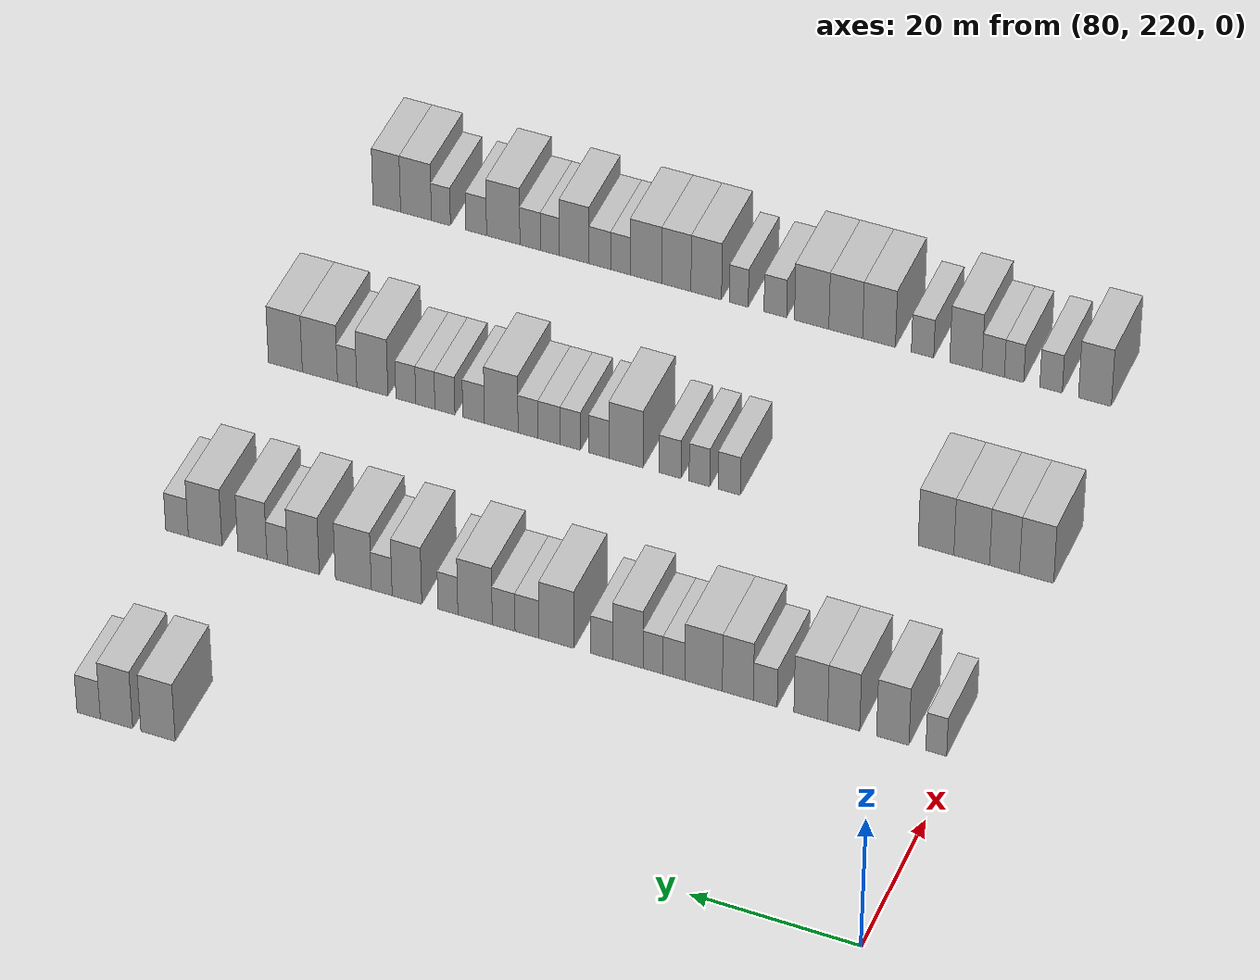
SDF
<sdf version="1.6">
 <world name="default">
  <model name="building_653">
   <static>1</static>
   <pose>85.0000 303.6651 0 0.000000 0.000000 0.000000</pose>
   <link name="link">
    <pose>0 0 4.50 0 0 0</pose>
    <collision name="collision"><geometry><box><size>10.0000 4.2047 9.0000</size></box></geometry></collision>
    <visual name="visual">
     <cast_shadows>0</cast_shadows>
     <geometry><box><size>10.0000 4.2047 9.0000</size></box></geometry>
     <material>
      <script>
       <uri>model://HANNAS_wall/materials/scripts</uri>
       <uri>model://HANNAS_wall/materials/textures</uri>
       <name>vrc/HANNAS_wall</name>
      </script>
     </material>
    </visual>
   </link>
  </model>
  <model name="building_654">
   <static>1</static>
   <pose>85.0000 308.7509 0 0.000000 0.000000 0.000000</pose>
   <link name="link">
    <pose>0 0 4.50 0 0 0</pose>
    <collision name="collision"><geometry><box><size>10.0000 3.9667 9.0000</size></box></geometry></collision>
    <visual name="visual">
     <cast_shadows>0</cast_shadows>
     <geometry><box><size>10.0000 3.9667 9.0000</size></box></geometry>
     <material>
      <script>
       <uri>model://HANNAS_wall/materials/scripts</uri>
       <uri>model://HANNAS_wall/materials/textures</uri>
       <name>vrc/HANNAS_wall</name>
      </script>
     </material>
    </visual>
   </link>
  </model>
  <model name="building_655">
   <static>1</static>
   <pose>85.0000 312.1723 0 0.000000 0.000000 0.000000</pose>
   <link name="link">
    <pose>0 0 3.00 0 0 0</pose>
    <collision name="collision"><geometry><box><size>10.0000 2.8761 6.0000</size></box></geometry></collision>
    <visual name="visual">
     <cast_shadows>0</cast_shadows>
     <geometry><box><size>10.0000 2.8761 6.0000</size></box></geometry>
     <material>
      <script>
       <uri>model://HANNAS_wall/materials/scripts</uri>
       <uri>model://HANNAS_wall/materials/textures</uri>
       <name>vrc/HANNAS_wall</name>
      </script>
     </material>
    </visual>
   </link>
  </model>
  <model name="building_865">
   <static>1</static>
   <pose>115.0000 222.4674 0 0.000000 0.000000 0.000000</pose>
   <link name="link">
    <pose>0 0 3.00 0 0 0</pose>
    <collision name="collision"><geometry><box><size>10.0000 2.4594 6.0000</size></box></geometry></collision>
    <visual name="visual">
     <cast_shadows>0</cast_shadows>
     <geometry><box><size>10.0000 2.4594 6.0000</size></box></geometry>
     <material>
      <script>
       <uri>model://HANNAS_wall/materials/scripts</uri>
       <uri>model://HANNAS_wall/materials/textures</uri>
       <name>vrc/HANNAS_wall</name>
      </script>
     </material>
    </visual>
   </link>
  </model>
  <model name="building_866">
   <static>1</static>
   <pose>115.0000 227.6227 0 0.000000 0.000000 0.000000</pose>
   <link name="link">
    <pose>0 0 4.50 0 0 0</pose>
    <collision name="collision"><geometry><box><size>10.0000 3.8511 9.0000</size></box></geometry></collision>
    <visual name="visual">
     <cast_shadows>0</cast_shadows>
     <geometry><box><size>10.0000 3.8511 9.0000</size></box></geometry>
     <material>
      <script>
       <uri>model://HANNAS_wall/materials/scripts</uri>
       <uri>model://HANNAS_wall/materials/textures</uri>
       <name>vrc/HANNAS_wall</name>
      </script>
     </material>
    </visual>
   </link>
  </model>
  <model name="building_867">
   <static>1</static>
   <pose>115.0000 233.4582 0 0.000000 0.000000 0.000000</pose>
   <link name="link">
    <pose>0 0 4.50 0 0 0</pose>
    <collision name="collision"><geometry><box><size>10.0000 3.8198 9.0000</size></box></geometry></collision>
    <visual name="visual">
     <cast_shadows>0</cast_shadows>
     <geometry><box><size>10.0000 3.8198 9.0000</size></box></geometry>
     <material>
      <script>
       <uri>model://HANNAS_wall/materials/scripts</uri>
       <uri>model://HANNAS_wall/materials/textures</uri>
       <name>vrc/HANNAS_wall</name>
      </script>
     </material>
    </visual>
   </link>
  </model>
  <model name="building_868">
   <static>1</static>
   <pose>115.0000 237.3818 0 0.000000 0.000000 0.000000</pose>
   <link name="link">
    <pose>0 0 4.50 0 0 0</pose>
    <collision name="collision"><geometry><box><size>10.0000 4.0274 9.0000</size></box></geometry></collision>
    <visual name="visual">
     <cast_shadows>0</cast_shadows>
     <geometry><box><size>10.0000 4.0274 9.0000</size></box></geometry>
     <material>
      <script>
       <uri>model://HANNAS_wall/materials/scripts</uri>
       <uri>model://HANNAS_wall/materials/textures</uri>
       <name>vrc/HANNAS_wall</name>
      </script>
     </material>
    </visual>
   </link>
  </model>
  <model name="building_869">
   <static>1</static>
   <pose>115.0000 242.8257 0 0.000000 0.000000 0.000000</pose>
   <link name="link">
    <pose>0 0 3.00 0 0 0</pose>
    <collision name="collision"><geometry><box><size>10.0000 2.8604 6.0000</size></box></geometry></collision>
    <visual name="visual">
     <cast_shadows>0</cast_shadows>
     <geometry><box><size>10.0000 2.8604 6.0000</size></box></geometry>
     <material>
      <script>
       <uri>model://HANNAS_wall/materials/scripts</uri>
       <uri>model://HANNAS_wall/materials/textures</uri>
       <name>vrc/HANNAS_wall</name>
      </script>
     </material>
    </visual>
   </link>
  </model>
  <model name="building_870">
   <static>1</static>
   <pose>115.0000 246.1180 0 0.000000 0.000000 0.000000</pose>
   <link name="link">
    <pose>0 0 4.50 0 0 0</pose>
    <collision name="collision"><geometry><box><size>10.0000 3.7242 9.0000</size></box></geometry></collision>
    <visual name="visual">
     <cast_shadows>0</cast_shadows>
     <geometry><box><size>10.0000 3.7242 9.0000</size></box></geometry>
     <material>
      <script>
       <uri>model://HANNAS_wall/materials/scripts</uri>
       <uri>model://HANNAS_wall/materials/textures</uri>
       <name>vrc/HANNAS_wall</name>
      </script>
     </material>
    </visual>
   </link>
  </model>
  <model name="building_871">
   <static>1</static>
   <pose>115.0000 250.2271 0 0.000000 0.000000 0.000000</pose>
   <link name="link">
    <pose>0 0 4.50 0 0 0</pose>
    <collision name="collision"><geometry><box><size>10.0000 4.4940 9.0000</size></box></geometry></collision>
    <visual name="visual">
     <cast_shadows>0</cast_shadows>
     <geometry><box><size>10.0000 4.4940 9.0000</size></box></geometry>
     <material>
      <script>
       <uri>model://HANNAS_wall/materials/scripts</uri>
       <uri>model://HANNAS_wall/materials/textures</uri>
       <name>vrc/HANNAS_wall</name>
      </script>
     </material>
    </visual>
   </link>
  </model>
  <model name="building_872">
   <static>1</static>
   <pose>115.0000 253.8026 0 0.000000 0.000000 0.000000</pose>
   <link name="link">
    <pose>0 0 3.00 0 0 0</pose>
    <collision name="collision"><geometry><box><size>10.0000 2.6571 6.0000</size></box></geometry></collision>
    <visual name="visual">
     <cast_shadows>0</cast_shadows>
     <geometry><box><size>10.0000 2.6571 6.0000</size></box></geometry>
     <material>
      <script>
       <uri>model://HANNAS_wall/materials/scripts</uri>
       <uri>model://HANNAS_wall/materials/textures</uri>
       <name>vrc/HANNAS_wall</name>
      </script>
     </material>
    </visual>
   </link>
  </model>
  <model name="building_873">
   <static>1</static>
   <pose>115.0000 256.3439 0 0.000000 0.000000 0.000000</pose>
   <link name="link">
    <pose>0 0 3.00 0 0 0</pose>
    <collision name="collision"><geometry><box><size>10.0000 2.4255 6.0000</size></box></geometry></collision>
    <visual name="visual">
     <cast_shadows>0</cast_shadows>
     <geometry><box><size>10.0000 2.4255 6.0000</size></box></geometry>
     <material>
      <script>
       <uri>model://HANNAS_wall/materials/scripts</uri>
       <uri>model://HANNAS_wall/materials/textures</uri>
       <name>vrc/HANNAS_wall</name>
      </script>
     </material>
    </visual>
   </link>
  </model>
  <model name="building_874">
   <static>1</static>
   <pose>115.0000 259.4051 0 0.000000 0.000000 0.000000</pose>
   <link name="link">
    <pose>0 0 4.50 0 0 0</pose>
    <collision name="collision"><geometry><box><size>10.0000 3.6969 9.0000</size></box></geometry></collision>
    <visual name="visual">
     <cast_shadows>0</cast_shadows>
     <geometry><box><size>10.0000 3.6969 9.0000</size></box></geometry>
     <material>
      <script>
       <uri>model://HANNAS_wall/materials/scripts</uri>
       <uri>model://HANNAS_wall/materials/textures</uri>
       <name>vrc/HANNAS_wall</name>
      </script>
     </material>
    </visual>
   </link>
  </model>
  <model name="building_875">
   <static>1</static>
   <pose>115.0000 262.5846 0 0.000000 0.000000 0.000000</pose>
   <link name="link">
    <pose>0 0 3.00 0 0 0</pose>
    <collision name="collision"><geometry><box><size>10.0000 2.6620 6.0000</size></box></geometry></collision>
    <visual name="visual">
     <cast_shadows>0</cast_shadows>
     <geometry><box><size>10.0000 2.6620 6.0000</size></box></geometry>
     <material>
      <script>
       <uri>model://HANNAS_wall/materials/scripts</uri>
       <uri>model://HANNAS_wall/materials/textures</uri>
       <name>vrc/HANNAS_wall</name>
      </script>
     </material>
    </visual>
   </link>
  </model>
  <model name="building_876">
   <static>1</static>
   <pose>115.0000 268.0481 0 0.000000 0.000000 0.000000</pose>
   <link name="link">
    <pose>0 0 4.50 0 0 0</pose>
    <collision name="collision"><geometry><box><size>10.0000 4.2652 9.0000</size></box></geometry></collision>
    <visual name="visual">
     <cast_shadows>0</cast_shadows>
     <geometry><box><size>10.0000 4.2652 9.0000</size></box></geometry>
     <material>
      <script>
       <uri>model://HANNAS_wall/materials/scripts</uri>
       <uri>model://HANNAS_wall/materials/textures</uri>
       <name>vrc/HANNAS_wall</name>
      </script>
     </material>
    </visual>
   </link>
  </model>
  <model name="building_877">
   <static>1</static>
   <pose>115.0000 271.6488 0 0.000000 0.000000 0.000000</pose>
   <link name="link">
    <pose>0 0 3.00 0 0 0</pose>
    <collision name="collision"><geometry><box><size>10.0000 2.9362 6.0000</size></box></geometry></collision>
    <visual name="visual">
     <cast_shadows>0</cast_shadows>
     <geometry><box><size>10.0000 2.9362 6.0000</size></box></geometry>
     <material>
      <script>
       <uri>model://HANNAS_wall/materials/scripts</uri>
       <uri>model://HANNAS_wall/materials/textures</uri>
       <name>vrc/HANNAS_wall</name>
      </script>
     </material>
    </visual>
   </link>
  </model>
  <model name="building_878">
   <static>1</static>
   <pose>115.0000 274.5128 0 0.000000 0.000000 0.000000</pose>
   <link name="link">
    <pose>0 0 3.00 0 0 0</pose>
    <collision name="collision"><geometry><box><size>10.0000 2.7919 6.0000</size></box></geometry></collision>
    <visual name="visual">
     <cast_shadows>0</cast_shadows>
     <geometry><box><size>10.0000 2.7919 6.0000</size></box></geometry>
     <material>
      <script>
       <uri>model://HANNAS_wall/materials/scripts</uri>
       <uri>model://HANNAS_wall/materials/textures</uri>
       <name>vrc/HANNAS_wall</name>
      </script>
     </material>
    </visual>
   </link>
  </model>
  <model name="building_879">
   <static>1</static>
   <pose>115.0000 278.0217 0 0.000000 0.000000 0.000000</pose>
   <link name="link">
    <pose>0 0 4.50 0 0 0</pose>
    <collision name="collision"><geometry><box><size>10.0000 4.2259 9.0000</size></box></geometry></collision>
    <visual name="visual">
     <cast_shadows>0</cast_shadows>
     <geometry><box><size>10.0000 4.2259 9.0000</size></box></geometry>
     <material>
      <script>
       <uri>model://HANNAS_wall/materials/scripts</uri>
       <uri>model://HANNAS_wall/materials/textures</uri>
       <name>vrc/HANNAS_wall</name>
      </script>
     </material>
    </visual>
   </link>
  </model>
  <model name="building_880">
   <static>1</static>
   <pose>115.0000 281.3563 0 0.000000 0.000000 0.000000</pose>
   <link name="link">
    <pose>0 0 3.00 0 0 0</pose>
    <collision name="collision"><geometry><box><size>10.0000 2.4433 6.0000</size></box></geometry></collision>
    <visual name="visual">
     <cast_shadows>0</cast_shadows>
     <geometry><box><size>10.0000 2.4433 6.0000</size></box></geometry>
     <material>
      <script>
       <uri>model://HANNAS_wall/materials/scripts</uri>
       <uri>model://HANNAS_wall/materials/textures</uri>
       <name>vrc/HANNAS_wall</name>
      </script>
     </material>
    </visual>
   </link>
  </model>
  <model name="building_881">
   <static>1</static>
   <pose>115.0000 286.4075 0 0.000000 0.000000 0.000000</pose>
   <link name="link">
    <pose>0 0 4.50 0 0 0</pose>
    <collision name="collision"><geometry><box><size>10.0000 3.6591 9.0000</size></box></geometry></collision>
    <visual name="visual">
     <cast_shadows>0</cast_shadows>
     <geometry><box><size>10.0000 3.6591 9.0000</size></box></geometry>
     <material>
      <script>
       <uri>model://HANNAS_wall/materials/scripts</uri>
       <uri>model://HANNAS_wall/materials/textures</uri>
       <name>vrc/HANNAS_wall</name>
      </script>
     </material>
    </visual>
   </link>
  </model>
  <model name="building_882">
   <static>1</static>
   <pose>115.0000 289.5174 0 0.000000 0.000000 0.000000</pose>
   <link name="link">
    <pose>0 0 3.00 0 0 0</pose>
    <collision name="collision"><geometry><box><size>10.0000 2.5607 6.0000</size></box></geometry></collision>
    <visual name="visual">
     <cast_shadows>0</cast_shadows>
     <geometry><box><size>10.0000 2.5607 6.0000</size></box></geometry>
     <material>
      <script>
       <uri>model://HANNAS_wall/materials/scripts</uri>
       <uri>model://HANNAS_wall/materials/textures</uri>
       <name>vrc/HANNAS_wall</name>
      </script>
     </material>
    </visual>
   </link>
  </model>
  <model name="building_883">
   <static>1</static>
   <pose>115.0000 293.0329 0 0.000000 0.000000 0.000000</pose>
   <link name="link">
    <pose>0 0 4.50 0 0 0</pose>
    <collision name="collision"><geometry><box><size>10.0000 4.4704 9.0000</size></box></geometry></collision>
    <visual name="visual">
     <cast_shadows>0</cast_shadows>
     <geometry><box><size>10.0000 4.4704 9.0000</size></box></geometry>
     <material>
      <script>
       <uri>model://HANNAS_wall/materials/scripts</uri>
       <uri>model://HANNAS_wall/materials/textures</uri>
       <name>vrc/HANNAS_wall</name>
      </script>
     </material>
    </visual>
   </link>
  </model>
  <model name="building_884">
   <static>1</static>
   <pose>115.0000 299.2275 0 0.000000 0.000000 0.000000</pose>
   <link name="link">
    <pose>0 0 4.50 0 0 0</pose>
    <collision name="collision"><geometry><box><size>10.0000 3.9188 9.0000</size></box></geometry></collision>
    <visual name="visual">
     <cast_shadows>0</cast_shadows>
     <geometry><box><size>10.0000 3.9188 9.0000</size></box></geometry>
     <material>
      <script>
       <uri>model://HANNAS_wall/materials/scripts</uri>
       <uri>model://HANNAS_wall/materials/textures</uri>
       <name>vrc/HANNAS_wall</name>
      </script>
     </material>
    </visual>
   </link>
  </model>
  <model name="building_885">
   <static>1</static>
   <pose>115.0000 302.4880 0 0.000000 0.000000 0.000000</pose>
   <link name="link">
    <pose>0 0 3.00 0 0 0</pose>
    <collision name="collision"><geometry><box><size>10.0000 2.6021 6.0000</size></box></geometry></collision>
    <visual name="visual">
     <cast_shadows>0</cast_shadows>
     <geometry><box><size>10.0000 2.6021 6.0000</size></box></geometry>
     <material>
      <script>
       <uri>model://HANNAS_wall/materials/scripts</uri>
       <uri>model://HANNAS_wall/materials/textures</uri>
       <name>vrc/HANNAS_wall</name>
      </script>
     </material>
    </visual>
   </link>
  </model>
  <model name="building_886">
   <static>1</static>
   <pose>115.0000 305.6022 0 0.000000 0.000000 0.000000</pose>
   <link name="link">
    <pose>0 0 4.50 0 0 0</pose>
    <collision name="collision"><geometry><box><size>10.0000 3.6263 9.0000</size></box></geometry></collision>
    <visual name="visual">
     <cast_shadows>0</cast_shadows>
     <geometry><box><size>10.0000 3.6263 9.0000</size></box></geometry>
     <material>
      <script>
       <uri>model://HANNAS_wall/materials/scripts</uri>
       <uri>model://HANNAS_wall/materials/textures</uri>
       <name>vrc/HANNAS_wall</name>
      </script>
     </material>
    </visual>
   </link>
  </model>
  <model name="building_887">
   <static>1</static>
   <pose>115.0000 311.5287 0 0.000000 0.000000 0.000000</pose>
   <link name="link">
    <pose>0 0 4.50 0 0 0</pose>
    <collision name="collision"><geometry><box><size>10.0000 4.2266 9.0000</size></box></geometry></collision>
    <visual name="visual">
     <cast_shadows>0</cast_shadows>
     <geometry><box><size>10.0000 4.2266 9.0000</size></box></geometry>
     <material>
      <script>
       <uri>model://HANNAS_wall/materials/scripts</uri>
       <uri>model://HANNAS_wall/materials/textures</uri>
       <name>vrc/HANNAS_wall</name>
      </script>
     </material>
    </visual>
   </link>
  </model>
  <model name="building_888">
   <static>1</static>
   <pose>115.0000 315.0605 0 0.000000 0.000000 0.000000</pose>
   <link name="link">
    <pose>0 0 3.00 0 0 0</pose>
    <collision name="collision"><geometry><box><size>10.0000 2.8370 6.0000</size></box></geometry></collision>
    <visual name="visual">
     <cast_shadows>0</cast_shadows>
     <geometry><box><size>10.0000 2.8370 6.0000</size></box></geometry>
     <material>
      <script>
       <uri>model://HANNAS_wall/materials/scripts</uri>
       <uri>model://HANNAS_wall/materials/textures</uri>
       <name>vrc/HANNAS_wall</name>
      </script>
     </material>
    </visual>
   </link>
  </model>
  <model name="building_1084">
   <static>1</static>
   <pose>145.0000 221.3325 0 0.000000 0.000000 0.000000</pose>
   <link name="link">
    <pose>0 0 4.50 0 0 0</pose>
    <collision name="collision"><geometry><box><size>10.0000 4.1390 9.0000</size></box></geometry></collision>
    <visual name="visual">
     <cast_shadows>0</cast_shadows>
     <geometry><box><size>10.0000 4.1390 9.0000</size></box></geometry>
     <material>
      <script>
       <uri>model://HANNAS_wall/materials/scripts</uri>
       <uri>model://HANNAS_wall/materials/textures</uri>
       <name>vrc/HANNAS_wall</name>
      </script>
     </material>
    </visual>
   </link>
  </model>
  <model name="building_1085">
   <static>1</static>
   <pose>145.0000 225.2139 0 0.000000 0.000000 0.000000</pose>
   <link name="link">
    <pose>0 0 4.50 0 0 0</pose>
    <collision name="collision"><geometry><box><size>10.0000 3.6239 9.0000</size></box></geometry></collision>
    <visual name="visual">
     <cast_shadows>0</cast_shadows>
     <geometry><box><size>10.0000 3.6239 9.0000</size></box></geometry>
     <material>
      <script>
       <uri>model://HANNAS_wall/materials/scripts</uri>
       <uri>model://HANNAS_wall/materials/textures</uri>
       <name>vrc/HANNAS_wall</name>
      </script>
     </material>
    </visual>
   </link>
  </model>
  <model name="building_1086">
   <static>1</static>
   <pose>145.0000 229.1868 0 0.000000 0.000000 0.000000</pose>
   <link name="link">
    <pose>0 0 4.50 0 0 0</pose>
    <collision name="collision"><geometry><box><size>10.0000 4.3218 9.0000</size></box></geometry></collision>
    <visual name="visual">
     <cast_shadows>0</cast_shadows>
     <geometry><box><size>10.0000 4.3218 9.0000</size></box></geometry>
     <material>
      <script>
       <uri>model://HANNAS_wall/materials/scripts</uri>
       <uri>model://HANNAS_wall/materials/textures</uri>
       <name>vrc/HANNAS_wall</name>
      </script>
     </material>
    </visual>
   </link>
  </model>
  <model name="building_1087">
   <static>1</static>
   <pose>145.0000 233.5197 0 0.000000 0.000000 0.000000</pose>
   <link name="link">
    <pose>0 0 4.50 0 0 0</pose>
    <collision name="collision"><geometry><box><size>10.0000 4.3439 9.0000</size></box></geometry></collision>
    <visual name="visual">
     <cast_shadows>0</cast_shadows>
     <geometry><box><size>10.0000 4.3439 9.0000</size></box></geometry>
     <material>
      <script>
       <uri>model://HANNAS_wall/materials/scripts</uri>
       <uri>model://HANNAS_wall/materials/textures</uri>
       <name>vrc/HANNAS_wall</name>
      </script>
     </material>
    </visual>
   </link>
  </model>
  <model name="building_1088">
   <static>1</static>
   <pose>145.0000 258.8813 0 0.000000 0.000000 0.000000</pose>
   <link name="link">
    <pose>0 0 3.00 0 0 0</pose>
    <collision name="collision"><geometry><box><size>10.0000 2.7931 6.0000</size></box></geometry></collision>
    <visual name="visual">
     <cast_shadows>0</cast_shadows>
     <geometry><box><size>10.0000 2.7931 6.0000</size></box></geometry>
     <material>
      <script>
       <uri>model://HANNAS_wall/materials/scripts</uri>
       <uri>model://HANNAS_wall/materials/textures</uri>
       <name>vrc/HANNAS_wall</name>
      </script>
     </material>
    </visual>
   </link>
  </model>
  <model name="building_1089">
   <static>1</static>
   <pose>145.0000 262.5697 0 0.000000 0.000000 0.000000</pose>
   <link name="link">
    <pose>0 0 3.00 0 0 0</pose>
    <collision name="collision"><geometry><box><size>10.0000 2.5837 6.0000</size></box></geometry></collision>
    <visual name="visual">
     <cast_shadows>0</cast_shadows>
     <geometry><box><size>10.0000 2.5837 6.0000</size></box></geometry>
     <material>
      <script>
       <uri>model://HANNAS_wall/materials/scripts</uri>
       <uri>model://HANNAS_wall/materials/textures</uri>
       <name>vrc/HANNAS_wall</name>
      </script>
     </material>
    </visual>
   </link>
  </model>
  <model name="building_1090">
   <static>1</static>
   <pose>145.0000 266.2246 0 0.000000 0.000000 0.000000</pose>
   <link name="link">
    <pose>0 0 3.00 0 0 0</pose>
    <collision name="collision"><geometry><box><size>10.0000 2.7260 6.0000</size></box></geometry></collision>
    <visual name="visual">
     <cast_shadows>0</cast_shadows>
     <geometry><box><size>10.0000 2.7260 6.0000</size></box></geometry>
     <material>
      <script>
       <uri>model://HANNAS_wall/materials/scripts</uri>
       <uri>model://HANNAS_wall/materials/textures</uri>
       <name>vrc/HANNAS_wall</name>
      </script>
     </material>
    </visual>
   </link>
  </model>
  <model name="building_1091">
   <static>1</static>
   <pose>145.0000 271.7166 0 0.000000 0.000000 0.000000</pose>
   <link name="link">
    <pose>0 0 4.50 0 0 0</pose>
    <collision name="collision"><geometry><box><size>10.0000 4.2580 9.0000</size></box></geometry></collision>
    <visual name="visual">
     <cast_shadows>0</cast_shadows>
     <geometry><box><size>10.0000 4.2580 9.0000</size></box></geometry>
     <material>
      <script>
       <uri>model://HANNAS_wall/materials/scripts</uri>
       <uri>model://HANNAS_wall/materials/textures</uri>
       <name>vrc/HANNAS_wall</name>
      </script>
     </material>
    </visual>
   </link>
  </model>
  <model name="building_1092">
   <static>1</static>
   <pose>145.0000 275.1176 0 0.000000 0.000000 0.000000</pose>
   <link name="link">
    <pose>0 0 3.00 0 0 0</pose>
    <collision name="collision"><geometry><box><size>10.0000 2.5440 6.0000</size></box></geometry></collision>
    <visual name="visual">
     <cast_shadows>0</cast_shadows>
     <geometry><box><size>10.0000 2.5440 6.0000</size></box></geometry>
     <material>
      <script>
       <uri>model://HANNAS_wall/materials/scripts</uri>
       <uri>model://HANNAS_wall/materials/textures</uri>
       <name>vrc/HANNAS_wall</name>
      </script>
     </material>
    </visual>
   </link>
  </model>
  <model name="building_1093">
   <static>1</static>
   <pose>145.0000 278.6627 0 0.000000 0.000000 0.000000</pose>
   <link name="link">
    <pose>0 0 3.00 0 0 0</pose>
    <collision name="collision"><geometry><box><size>10.0000 2.5462 6.0000</size></box></geometry></collision>
    <visual name="visual">
     <cast_shadows>0</cast_shadows>
     <geometry><box><size>10.0000 2.5462 6.0000</size></box></geometry>
     <material>
      <script>
       <uri>model://HANNAS_wall/materials/scripts</uri>
       <uri>model://HANNAS_wall/materials/textures</uri>
       <name>vrc/HANNAS_wall</name>
      </script>
     </material>
    </visual>
   </link>
  </model>
  <model name="building_1094">
   <static>1</static>
   <pose>145.0000 281.3273 0 0.000000 0.000000 0.000000</pose>
   <link name="link">
    <pose>0 0 3.00 0 0 0</pose>
    <collision name="collision"><geometry><box><size>10.0000 2.7830 6.0000</size></box></geometry></collision>
    <visual name="visual">
     <cast_shadows>0</cast_shadows>
     <geometry><box><size>10.0000 2.7830 6.0000</size></box></geometry>
     <material>
      <script>
       <uri>model://HANNAS_wall/materials/scripts</uri>
       <uri>model://HANNAS_wall/materials/textures</uri>
       <name>vrc/HANNAS_wall</name>
      </script>
     </material>
    </visual>
   </link>
  </model>
  <model name="building_1095">
   <static>1</static>
   <pose>145.0000 283.9771 0 0.000000 0.000000 0.000000</pose>
   <link name="link">
    <pose>0 0 3.00 0 0 0</pose>
    <collision name="collision"><geometry><box><size>10.0000 2.5165 6.0000</size></box></geometry></collision>
    <visual name="visual">
     <cast_shadows>0</cast_shadows>
     <geometry><box><size>10.0000 2.5165 6.0000</size></box></geometry>
     <material>
      <script>
       <uri>model://HANNAS_wall/materials/scripts</uri>
       <uri>model://HANNAS_wall/materials/textures</uri>
       <name>vrc/HANNAS_wall</name>
      </script>
     </material>
    </visual>
   </link>
  </model>
  <model name="building_1096">
   <static>1</static>
   <pose>145.0000 287.3557 0 0.000000 0.000000 0.000000</pose>
   <link name="link">
    <pose>0 0 4.50 0 0 0</pose>
    <collision name="collision"><geometry><box><size>10.0000 4.2409 9.0000</size></box></geometry></collision>
    <visual name="visual">
     <cast_shadows>0</cast_shadows>
     <geometry><box><size>10.0000 4.2409 9.0000</size></box></geometry>
     <material>
      <script>
       <uri>model://HANNAS_wall/materials/scripts</uri>
       <uri>model://HANNAS_wall/materials/textures</uri>
       <name>vrc/HANNAS_wall</name>
      </script>
     </material>
    </visual>
   </link>
  </model>
  <model name="building_1097">
   <static>1</static>
   <pose>145.0000 290.8438 0 0.000000 0.000000 0.000000</pose>
   <link name="link">
    <pose>0 0 3.00 0 0 0</pose>
    <collision name="collision"><geometry><box><size>10.0000 2.7352 6.0000</size></box></geometry></collision>
    <visual name="visual">
     <cast_shadows>0</cast_shadows>
     <geometry><box><size>10.0000 2.7352 6.0000</size></box></geometry>
     <material>
      <script>
       <uri>model://HANNAS_wall/materials/scripts</uri>
       <uri>model://HANNAS_wall/materials/textures</uri>
       <name>vrc/HANNAS_wall</name>
      </script>
     </material>
    </visual>
   </link>
  </model>
  <model name="building_1098">
   <static>1</static>
   <pose>145.0000 294.4801 0 0.000000 0.000000 0.000000</pose>
   <link name="link">
    <pose>0 0 3.00 0 0 0</pose>
    <collision name="collision"><geometry><box><size>10.0000 2.5374 6.0000</size></box></geometry></collision>
    <visual name="visual">
     <cast_shadows>0</cast_shadows>
     <geometry><box><size>10.0000 2.5374 6.0000</size></box></geometry>
     <material>
      <script>
       <uri>model://HANNAS_wall/materials/scripts</uri>
       <uri>model://HANNAS_wall/materials/textures</uri>
       <name>vrc/HANNAS_wall</name>
      </script>
     </material>
    </visual>
   </link>
  </model>
  <model name="building_1099">
   <static>1</static>
   <pose>145.0000 296.9591 0 0.000000 0.000000 0.000000</pose>
   <link name="link">
    <pose>0 0 3.00 0 0 0</pose>
    <collision name="collision"><geometry><box><size>10.0000 2.4206 6.0000</size></box></geometry></collision>
    <visual name="visual">
     <cast_shadows>0</cast_shadows>
     <geometry><box><size>10.0000 2.4206 6.0000</size></box></geometry>
     <material>
      <script>
       <uri>model://HANNAS_wall/materials/scripts</uri>
       <uri>model://HANNAS_wall/materials/textures</uri>
       <name>vrc/HANNAS_wall</name>
      </script>
     </material>
    </visual>
   </link>
  </model>
  <model name="building_1100">
   <static>1</static>
   <pose>145.0000 299.4371 0 0.000000 0.000000 0.000000</pose>
   <link name="link">
    <pose>0 0 3.00 0 0 0</pose>
    <collision name="collision"><geometry><box><size>10.0000 2.5355 6.0000</size></box></geometry></collision>
    <visual name="visual">
     <cast_shadows>0</cast_shadows>
     <geometry><box><size>10.0000 2.5355 6.0000</size></box></geometry>
     <material>
      <script>
       <uri>model://HANNAS_wall/materials/scripts</uri>
       <uri>model://HANNAS_wall/materials/textures</uri>
       <name>vrc/HANNAS_wall</name>
      </script>
     </material>
    </visual>
   </link>
  </model>
  <model name="building_1101">
   <static>1</static>
   <pose>145.0000 303.6927 0 0.000000 0.000000 0.000000</pose>
   <link name="link">
    <pose>0 0 4.50 0 0 0</pose>
    <collision name="collision"><geometry><box><size>10.0000 3.9758 9.0000</size></box></geometry></collision>
    <visual name="visual">
     <cast_shadows>0</cast_shadows>
     <geometry><box><size>10.0000 3.9758 9.0000</size></box></geometry>
     <material>
      <script>
       <uri>model://HANNAS_wall/materials/scripts</uri>
       <uri>model://HANNAS_wall/materials/textures</uri>
       <name>vrc/HANNAS_wall</name>
      </script>
     </material>
    </visual>
   </link>
  </model>
  <model name="building_1102">
   <static>1</static>
   <pose>145.0000 306.9151 0 0.000000 0.000000 0.000000</pose>
   <link name="link">
    <pose>0 0 3.00 0 0 0</pose>
    <collision name="collision"><geometry><box><size>10.0000 2.4689 6.0000</size></box></geometry></collision>
    <visual name="visual">
     <cast_shadows>0</cast_shadows>
     <geometry><box><size>10.0000 2.4689 6.0000</size></box></geometry>
     <material>
      <script>
       <uri>model://HANNAS_wall/materials/scripts</uri>
       <uri>model://HANNAS_wall/materials/textures</uri>
       <name>vrc/HANNAS_wall</name>
      </script>
     </material>
    </visual>
   </link>
  </model>
  <model name="building_1103">
   <static>1</static>
   <pose>145.0000 310.3976 0 0.000000 0.000000 0.000000</pose>
   <link name="link">
    <pose>0 0 4.50 0 0 0</pose>
    <collision name="collision"><geometry><box><size>10.0000 4.4960 9.0000</size></box></geometry></collision>
    <visual name="visual">
     <cast_shadows>0</cast_shadows>
     <geometry><box><size>10.0000 4.4960 9.0000</size></box></geometry>
     <material>
      <script>
       <uri>model://HANNAS_wall/materials/scripts</uri>
       <uri>model://HANNAS_wall/materials/textures</uri>
       <name>vrc/HANNAS_wall</name>
      </script>
     </material>
    </visual>
   </link>
  </model>
  <model name="building_1104">
   <static>1</static>
   <pose>145.0000 314.8175 0 0.000000 0.000000 0.000000</pose>
   <link name="link">
    <pose>0 0 4.50 0 0 0</pose>
    <collision name="collision"><geometry><box><size>10.0000 4.3439 9.0000</size></box></geometry></collision>
    <visual name="visual">
     <cast_shadows>0</cast_shadows>
     <geometry><box><size>10.0000 4.3439 9.0000</size></box></geometry>
     <material>
      <script>
       <uri>model://HANNAS_wall/materials/scripts</uri>
       <uri>model://HANNAS_wall/materials/textures</uri>
       <name>vrc/HANNAS_wall</name>
      </script>
     </material>
    </visual>
   </link>
  </model>
  <model name="building_1316">
   <static>1</static>
   <pose>175.0000 224.7871 0 0.000000 0.000000 0.000000</pose>
   <link name="link">
    <pose>0 0 4.50 0 0 0</pose>
    <collision name="collision"><geometry><box><size>10.0000 4.0592 9.0000</size></box></geometry></collision>
    <visual name="visual">
     <cast_shadows>0</cast_shadows>
     <geometry><box><size>10.0000 4.0592 9.0000</size></box></geometry>
     <material>
      <script>
       <uri>model://HANNAS_wall/materials/scripts</uri>
       <uri>model://HANNAS_wall/materials/textures</uri>
       <name>vrc/HANNAS_wall</name>
      </script>
     </material>
    </visual>
   </link>
  </model>
  <model name="building_1317">
   <static>1</static>
   <pose>175.0000 230.2107 0 0.000000 0.000000 0.000000</pose>
   <link name="link">
    <pose>0 0 3.00 0 0 0</pose>
    <collision name="collision"><geometry><box><size>10.0000 2.7880 6.0000</size></box></geometry></collision>
    <visual name="visual">
     <cast_shadows>0</cast_shadows>
     <geometry><box><size>10.0000 2.7880 6.0000</size></box></geometry>
     <material>
      <script>
       <uri>model://HANNAS_wall/materials/scripts</uri>
       <uri>model://HANNAS_wall/materials/textures</uri>
       <name>vrc/HANNAS_wall</name>
      </script>
     </material>
    </visual>
   </link>
  </model>
  <model name="building_1318">
   <static>1</static>
   <pose>175.0000 234.8050 0 0.000000 0.000000 0.000000</pose>
   <link name="link">
    <pose>0 0 3.00 0 0 0</pose>
    <collision name="collision"><geometry><box><size>10.0000 2.4006 6.0000</size></box></geometry></collision>
    <visual name="visual">
     <cast_shadows>0</cast_shadows>
     <geometry><box><size>10.0000 2.4006 6.0000</size></box></geometry>
     <material>
      <script>
       <uri>model://HANNAS_wall/materials/scripts</uri>
       <uri>model://HANNAS_wall/materials/textures</uri>
       <name>vrc/HANNAS_wall</name>
      </script>
     </material>
    </visual>
   </link>
  </model>
  <model name="building_1319">
   <static>1</static>
   <pose>175.0000 237.4036 0 0.000000 0.000000 0.000000</pose>
   <link name="link">
    <pose>0 0 3.00 0 0 0</pose>
    <collision name="collision"><geometry><box><size>10.0000 2.7967 6.0000</size></box></geometry></collision>
    <visual name="visual">
     <cast_shadows>0</cast_shadows>
     <geometry><box><size>10.0000 2.7967 6.0000</size></box></geometry>
     <material>
      <script>
       <uri>model://HANNAS_wall/materials/scripts</uri>
       <uri>model://HANNAS_wall/materials/textures</uri>
       <name>vrc/HANNAS_wall</name>
      </script>
     </material>
    </visual>
   </link>
  </model>
  <model name="building_1320">
   <static>1</static>
   <pose>175.0000 240.8137 0 0.000000 0.000000 0.000000</pose>
   <link name="link">
    <pose>0 0 4.50 0 0 0</pose>
    <collision name="collision"><geometry><box><size>10.0000 4.0235 9.0000</size></box></geometry></collision>
    <visual name="visual">
     <cast_shadows>0</cast_shadows>
     <geometry><box><size>10.0000 4.0235 9.0000</size></box></geometry>
     <material>
      <script>
       <uri>model://HANNAS_wall/materials/scripts</uri>
       <uri>model://HANNAS_wall/materials/textures</uri>
       <name>vrc/HANNAS_wall</name>
      </script>
     </material>
    </visual>
   </link>
  </model>
  <model name="building_1321">
   <static>1</static>
   <pose>175.0000 246.2249 0 0.000000 0.000000 0.000000</pose>
   <link name="link">
    <pose>0 0 3.00 0 0 0</pose>
    <collision name="collision"><geometry><box><size>10.0000 2.7988 6.0000</size></box></geometry></collision>
    <visual name="visual">
     <cast_shadows>0</cast_shadows>
     <geometry><box><size>10.0000 2.7988 6.0000</size></box></geometry>
     <material>
      <script>
       <uri>model://HANNAS_wall/materials/scripts</uri>
       <uri>model://HANNAS_wall/materials/textures</uri>
       <name>vrc/HANNAS_wall</name>
      </script>
     </material>
    </visual>
   </link>
  </model>
  <model name="building_1322">
   <static>1</static>
   <pose>175.0000 251.6919 0 0.000000 0.000000 0.000000</pose>
   <link name="link">
    <pose>0 0 4.50 0 0 0</pose>
    <collision name="collision"><geometry><box><size>10.0000 4.1352 9.0000</size></box></geometry></collision>
    <visual name="visual">
     <cast_shadows>0</cast_shadows>
     <geometry><box><size>10.0000 4.1352 9.0000</size></box></geometry>
     <material>
      <script>
       <uri>model://HANNAS_wall/materials/scripts</uri>
       <uri>model://HANNAS_wall/materials/textures</uri>
       <name>vrc/HANNAS_wall</name>
      </script>
     </material>
    </visual>
   </link>
  </model>
  <model name="building_1323">
   <static>1</static>
   <pose>175.0000 255.8831 0 0.000000 0.000000 0.000000</pose>
   <link name="link">
    <pose>0 0 4.50 0 0 0</pose>
    <collision name="collision"><geometry><box><size>10.0000 4.2471 9.0000</size></box></geometry></collision>
    <visual name="visual">
     <cast_shadows>0</cast_shadows>
     <geometry><box><size>10.0000 4.2471 9.0000</size></box></geometry>
     <material>
      <script>
       <uri>model://HANNAS_wall/materials/scripts</uri>
       <uri>model://HANNAS_wall/materials/textures</uri>
       <name>vrc/HANNAS_wall</name>
      </script>
     </material>
    </visual>
   </link>
  </model>
  <model name="building_1324">
   <static>1</static>
   <pose>175.0000 260.1798 0 0.000000 0.000000 0.000000</pose>
   <link name="link">
    <pose>0 0 4.50 0 0 0</pose>
    <collision name="collision"><geometry><box><size>10.0000 4.3464 9.0000</size></box></geometry></collision>
    <visual name="visual">
     <cast_shadows>0</cast_shadows>
     <geometry><box><size>10.0000 4.3464 9.0000</size></box></geometry>
     <material>
      <script>
       <uri>model://HANNAS_wall/materials/scripts</uri>
       <uri>model://HANNAS_wall/materials/textures</uri>
       <name>vrc/HANNAS_wall</name>
      </script>
     </material>
    </visual>
   </link>
  </model>
  <model name="building_1325">
   <static>1</static>
   <pose>175.0000 264.7823 0 0.000000 0.000000 0.000000</pose>
   <link name="link">
    <pose>0 0 3.00 0 0 0</pose>
    <collision name="collision"><geometry><box><size>10.0000 2.8586 6.0000</size></box></geometry></collision>
    <visual name="visual">
     <cast_shadows>0</cast_shadows>
     <geometry><box><size>10.0000 2.8586 6.0000</size></box></geometry>
     <material>
      <script>
       <uri>model://HANNAS_wall/materials/scripts</uri>
       <uri>model://HANNAS_wall/materials/textures</uri>
       <name>vrc/HANNAS_wall</name>
      </script>
     </material>
    </visual>
   </link>
  </model>
  <model name="building_1326">
   <static>1</static>
   <pose>175.0000 269.4123 0 0.000000 0.000000 0.000000</pose>
   <link name="link">
    <pose>0 0 3.00 0 0 0</pose>
    <collision name="collision"><geometry><box><size>10.0000 2.4015 6.0000</size></box></geometry></collision>
    <visual name="visual">
     <cast_shadows>0</cast_shadows>
     <geometry><box><size>10.0000 2.4015 6.0000</size></box></geometry>
     <material>
      <script>
       <uri>model://HANNAS_wall/materials/scripts</uri>
       <uri>model://HANNAS_wall/materials/textures</uri>
       <name>vrc/HANNAS_wall</name>
      </script>
     </material>
    </visual>
   </link>
  </model>
  <model name="building_1327">
   <static>1</static>
   <pose>175.0000 273.5625 0 0.000000 0.000000 0.000000</pose>
   <link name="link">
    <pose>0 0 4.50 0 0 0</pose>
    <collision name="collision"><geometry><box><size>10.0000 3.8989 9.0000</size></box></geometry></collision>
    <visual name="visual">
     <cast_shadows>0</cast_shadows>
     <geometry><box><size>10.0000 3.8989 9.0000</size></box></geometry>
     <material>
      <script>
       <uri>model://HANNAS_wall/materials/scripts</uri>
       <uri>model://HANNAS_wall/materials/textures</uri>
       <name>vrc/HANNAS_wall</name>
      </script>
     </material>
    </visual>
   </link>
  </model>
  <model name="building_1328">
   <static>1</static>
   <pose>175.0000 277.3789 0 0.000000 0.000000 0.000000</pose>
   <link name="link">
    <pose>0 0 4.50 0 0 0</pose>
    <collision name="collision"><geometry><box><size>10.0000 3.7339 9.0000</size></box></geometry></collision>
    <visual name="visual">
     <cast_shadows>0</cast_shadows>
     <geometry><box><size>10.0000 3.7339 9.0000</size></box></geometry>
     <material>
      <script>
       <uri>model://HANNAS_wall/materials/scripts</uri>
       <uri>model://HANNAS_wall/materials/textures</uri>
       <name>vrc/HANNAS_wall</name>
      </script>
     </material>
    </visual>
   </link>
  </model>
  <model name="building_1329">
   <static>1</static>
   <pose>175.0000 281.2633 0 0.000000 0.000000 0.000000</pose>
   <link name="link">
    <pose>0 0 4.50 0 0 0</pose>
    <collision name="collision"><geometry><box><size>10.0000 4.0349 9.0000</size></box></geometry></collision>
    <visual name="visual">
     <cast_shadows>0</cast_shadows>
     <geometry><box><size>10.0000 4.0349 9.0000</size></box></geometry>
     <material>
      <script>
       <uri>model://HANNAS_wall/materials/scripts</uri>
       <uri>model://HANNAS_wall/materials/textures</uri>
       <name>vrc/HANNAS_wall</name>
      </script>
     </material>
    </visual>
   </link>
  </model>
  <model name="building_1330">
   <static>1</static>
   <pose>175.0000 284.5419 0 0.000000 0.000000 0.000000</pose>
   <link name="link">
    <pose>0 0 3.00 0 0 0</pose>
    <collision name="collision"><geometry><box><size>10.0000 2.5222 6.0000</size></box></geometry></collision>
    <visual name="visual">
     <cast_shadows>0</cast_shadows>
     <geometry><box><size>10.0000 2.5222 6.0000</size></box></geometry>
     <material>
      <script>
       <uri>model://HANNAS_wall/materials/scripts</uri>
       <uri>model://HANNAS_wall/materials/textures</uri>
       <name>vrc/HANNAS_wall</name>
      </script>
     </material>
    </visual>
   </link>
  </model>
  <model name="building_1331">
   <static>1</static>
   <pose>175.0000 287.1769 0 0.000000 0.000000 0.000000</pose>
   <link name="link">
    <pose>0 0 3.00 0 0 0</pose>
    <collision name="collision"><geometry><box><size>10.0000 2.7478 6.0000</size></box></geometry></collision>
    <visual name="visual">
     <cast_shadows>0</cast_shadows>
     <geometry><box><size>10.0000 2.7478 6.0000</size></box></geometry>
     <material>
      <script>
       <uri>model://HANNAS_wall/materials/scripts</uri>
       <uri>model://HANNAS_wall/materials/textures</uri>
       <name>vrc/HANNAS_wall</name>
      </script>
     </material>
    </visual>
   </link>
  </model>
  <model name="building_1332">
   <static>1</static>
   <pose>175.0000 290.4670 0 0.000000 0.000000 0.000000</pose>
   <link name="link">
    <pose>0 0 4.50 0 0 0</pose>
    <collision name="collision"><geometry><box><size>10.0000 3.8324 9.0000</size></box></geometry></collision>
    <visual name="visual">
     <cast_shadows>0</cast_shadows>
     <geometry><box><size>10.0000 3.8324 9.0000</size></box></geometry>
     <material>
      <script>
       <uri>model://HANNAS_wall/materials/scripts</uri>
       <uri>model://HANNAS_wall/materials/textures</uri>
       <name>vrc/HANNAS_wall</name>
      </script>
     </material>
    </visual>
   </link>
  </model>
  <model name="building_1333">
   <static>1</static>
   <pose>175.0000 293.6049 0 0.000000 0.000000 0.000000</pose>
   <link name="link">
    <pose>0 0 3.00 0 0 0</pose>
    <collision name="collision"><geometry><box><size>10.0000 2.4435 6.0000</size></box></geometry></collision>
    <visual name="visual">
     <cast_shadows>0</cast_shadows>
     <geometry><box><size>10.0000 2.4435 6.0000</size></box></geometry>
     <material>
      <script>
       <uri>model://HANNAS_wall/materials/scripts</uri>
       <uri>model://HANNAS_wall/materials/textures</uri>
       <name>vrc/HANNAS_wall</name>
      </script>
     </material>
    </visual>
   </link>
  </model>
  <model name="building_1334">
   <static>1</static>
   <pose>175.0000 296.1597 0 0.000000 0.000000 0.000000</pose>
   <link name="link">
    <pose>0 0 3.00 0 0 0</pose>
    <collision name="collision"><geometry><box><size>10.0000 2.6661 6.0000</size></box></geometry></collision>
    <visual name="visual">
     <cast_shadows>0</cast_shadows>
     <geometry><box><size>10.0000 2.6661 6.0000</size></box></geometry>
     <material>
      <script>
       <uri>model://HANNAS_wall/materials/scripts</uri>
       <uri>model://HANNAS_wall/materials/textures</uri>
       <name>vrc/HANNAS_wall</name>
      </script>
     </material>
    </visual>
   </link>
  </model>
  <model name="building_1335">
   <static>1</static>
   <pose>175.0000 299.6504 0 0.000000 0.000000 0.000000</pose>
   <link name="link">
    <pose>0 0 4.50 0 0 0</pose>
    <collision name="collision"><geometry><box><size>10.0000 4.3153 9.0000</size></box></geometry></collision>
    <visual name="visual">
     <cast_shadows>0</cast_shadows>
     <geometry><box><size>10.0000 4.3153 9.0000</size></box></geometry>
     <material>
      <script>
       <uri>model://HANNAS_wall/materials/scripts</uri>
       <uri>model://HANNAS_wall/materials/textures</uri>
       <name>vrc/HANNAS_wall</name>
      </script>
     </material>
    </visual>
   </link>
  </model>
  <model name="building_1336">
   <static>1</static>
   <pose>175.0000 303.1595 0 0.000000 0.000000 0.000000</pose>
   <link name="link">
    <pose>0 0 3.00 0 0 0</pose>
    <collision name="collision"><geometry><box><size>10.0000 2.7029 6.0000</size></box></geometry></collision>
    <visual name="visual">
     <cast_shadows>0</cast_shadows>
     <geometry><box><size>10.0000 2.7029 6.0000</size></box></geometry>
     <material>
      <script>
       <uri>model://HANNAS_wall/materials/scripts</uri>
       <uri>model://HANNAS_wall/materials/textures</uri>
       <name>vrc/HANNAS_wall</name>
      </script>
     </material>
    </visual>
   </link>
  </model>
  <model name="building_1337">
   <static>1</static>
   <pose>175.0000 307.7481 0 0.000000 0.000000 0.000000</pose>
   <link name="link">
    <pose>0 0 3.00 0 0 0</pose>
    <collision name="collision"><geometry><box><size>10.0000 2.4742 6.0000</size></box></geometry></collision>
    <visual name="visual">
     <cast_shadows>0</cast_shadows>
     <geometry><box><size>10.0000 2.4742 6.0000</size></box></geometry>
     <material>
      <script>
       <uri>model://HANNAS_wall/materials/scripts</uri>
       <uri>model://HANNAS_wall/materials/textures</uri>
       <name>vrc/HANNAS_wall</name>
      </script>
     </material>
    </visual>
   </link>
  </model>
  <model name="building_1338">
   <static>1</static>
   <pose>175.0000 310.9992 0 0.000000 0.000000 0.000000</pose>
   <link name="link">
    <pose>0 0 4.50 0 0 0</pose>
    <collision name="collision"><geometry><box><size>10.0000 4.0281 9.0000</size></box></geometry></collision>
    <visual name="visual">
     <cast_shadows>0</cast_shadows>
     <geometry><box><size>10.0000 4.0281 9.0000</size></box></geometry>
     <material>
      <script>
       <uri>model://HANNAS_wall/materials/scripts</uri>
       <uri>model://HANNAS_wall/materials/textures</uri>
       <name>vrc/HANNAS_wall</name>
      </script>
     </material>
    </visual>
   </link>
  </model>
  <model name="building_1339">
   <static>1</static>
   <pose>175.0000 314.8136 0 0.000000 0.000000 0.000000</pose>
   <link name="link">
    <pose>0 0 4.50 0 0 0</pose>
    <collision name="collision"><geometry><box><size>10.0000 3.6006 9.0000</size></box></geometry></collision>
    <visual name="visual">
     <cast_shadows>0</cast_shadows>
     <geometry><box><size>10.0000 3.6006 9.0000</size></box></geometry>
     <material>
      <script>
       <uri>model://HANNAS_wall/materials/scripts</uri>
       <uri>model://HANNAS_wall/materials/textures</uri>
       <name>vrc/HANNAS_wall</name>
      </script>
     </material>
    </visual>
   </link>
  </model>
 </world>
</sdf>
